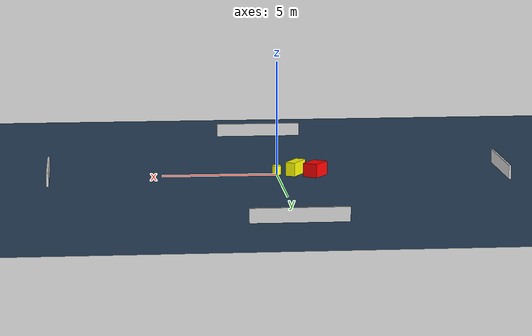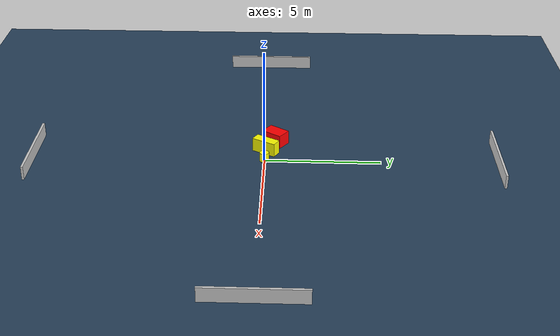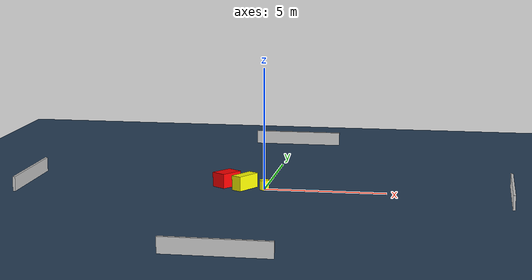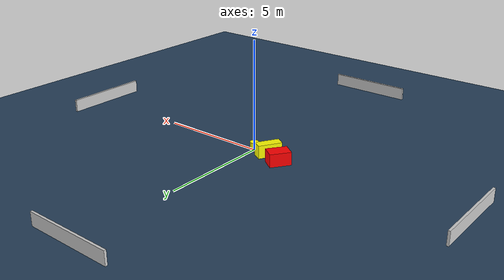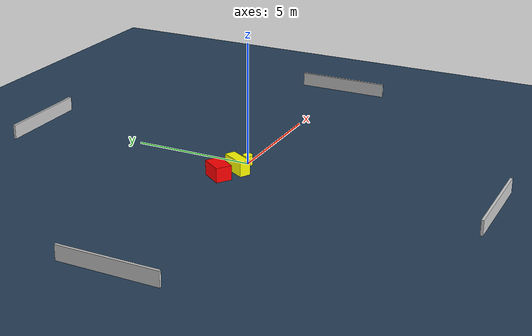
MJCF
<?xml version="1.0" ?>
<mujoco model="generated_environment">
  <option timestep="0.01" integrator="RK4" cone="elliptic"/>
  <default>
    <geom density="1"/>
  </default>
  <asset>
    <texture builtin="gradient" height="3072" name="skybox" rgb1="0.3 0.5 0.7" rgb2="0 0 0" type="skybox" width="512"/>
    <texture builtin="checker" height="300" name="groundplane" rgb1="0.2 0.3 0.4" rgb2="0.1 0.2 0.3" type="2d" width="300"/>
    <material name="groundplane" reflectance="0.2" texrepeat="5 5" texture="groundplane"/>
  </asset>
  <worldbody>
    <light dir="0 0 -1" directional="true" pos="0 0 1.5"/>
    <geom condim="3" friction="0.5 0.005 0.001" material="groundplane" name="floor" pos="0 0 0" size="0 0 0.05" type="plane"/>
    <body name="walls">
      <geom name="wall_1" condim="4" pos="-10.0 0.0 0.3" rgba="0.800000011920929 0.800000011920929 0.800000011920929 1.0" size="0.05 2.0 0.3" type="box"/>
      <geom name="wall_2" condim="4" pos="10.0 0.0 0.3" rgba="0.800000011920929 0.800000011920929 0.800000011920929 1.0" size="0.05 2.0 0.3" type="box"/>
      <geom name="wall_3" condim="4" pos="0.0 -10.0 0.3" rgba="0.800000011920929 0.800000011920929 0.800000011920929 1.0" size="2.0 0.05 0.3" type="box"/>
      <geom name="wall_4" condim="4" pos="0.0 10.0 0.3" rgba="0.800000011920929 0.800000011920929 0.800000011920929 1.0" size="2.0 0.05 0.3" type="box"/>
    </body>
    <body name="robot">
      <joint name="joint_x" type="slide" pos="0 0 0" axis="1 0 0"/>
      <joint name="joint_y" type="slide" pos="0 0 0" axis="0 1 0"/>
      <geom name="robot" type="cylinder" pos="0.0 0.0 0.2" size="0.2 0.2 0.0" mass="5.0" friction="1.0 0.005 0.0001" condim="4" rgba="1.0 1.0 0.0 1.0"/>
    </body>
    <body name="obstacle_1_movable">
      <geom name="obstacle_1_movable" condim="4" pos="-0.8213881433376553 0.03885703156091697 0.3" euler="0 0 239.64276430597735" friction="0.0 0.005 0.001" rgba="1.0 1.0 0.0 1.0" size="0.5507973268233287 0.22242971800019318 0.3" type="box" mass="0.1"/>
      <joint type="free"/>
    </body>
    <body name="obstacle_2_static">
      <geom name="obstacle_2_static" condim="4" pos="-1.6561060969855725 0.43520915704100643 0.3" euler="0 0 324.63966458065926" friction="0.0 0.005 0.001" rgba="1.0 0.0 0.0 1.0" size="0.32715880592271085 0.4800060274785585 0.3" type="box"/>
    </body>
  </worldbody>
  <actuator>
    <motor name="actuator_x" joint="joint_x" gear="1" ctrlrange="-1 1"/>
    <motor name="actuator_y" joint="joint_y" gear="1" ctrlrange="-1 1"/>
  </actuator>
</mujoco>
